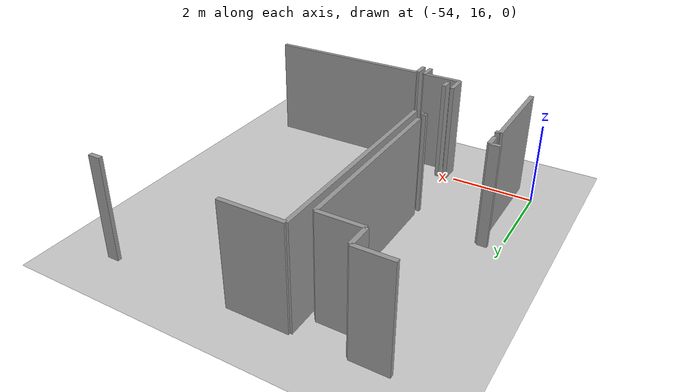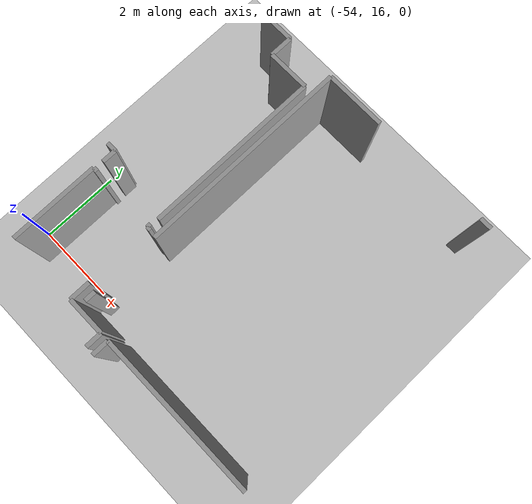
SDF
<sdf version="1.6">
 <world name="default">
  <model name="ground_plane">
   <static>1</static>
   <link name="link">
    <collision name="collision">
     <geometry><plane><normal>0 0 1</normal><size>100 100</size></plane></geometry>
     <surface><friction><ode><mu>100</mu><mu2>50</mu2></ode></friction></surface>
    </collision>
    <visual name="visual">
     <cast_shadows>0</cast_shadows>
     <geometry><plane><normal>0 0 1</normal><size>100 100</size></plane></geometry>
     <material>
      <script><uri>file://media/materials/scripts/gazebo.material</uri><name>Gazebo/Grey</name></script>
     </material>
    </visual>
   </link>
  </model>
  <model name="50010539">
   <static>1</static>
   <link name="Wall_8">
    <collision name="Wall_8_Collision">
     <geometry><box><size>0.857066639567 0.1 2.5</size></box></geometry>
     <pose>0.428533319784 0 1.25 0 0 0</pose>
    </collision>
    <visual name="Wall_8_Visual">
     <pose>0.428533319784 0 1.25 0 0 0</pose>
     <geometry><box><size>0.857066639567 0.1 2.5</size></box></geometry>
     <material>
      <script><uri>file://media/materials/scripts/gazebo.material</uri><name>Gazebo/Grey</name></script>
      <ambient>1 1 1 1</ambient>
     </material>
    </visual>
    <pose>9.16071746145 -0.0176570717207 0 0 0 0.0</pose>
   </link>
   <link name="Wall_9">
    <collision name="Wall_9_Collision">
     <geometry><box><size>0.54851248698 0.1 2.5</size></box></geometry>
     <pose>0.27425624349 0 1.25 0 0 0</pose>
    </collision>
    <visual name="Wall_9_Visual">
     <pose>0.27425624349 0 1.25 0 0 0</pose>
     <geometry><box><size>0.54851248698 0.1 2.5</size></box></geometry>
     <material>
      <script><uri>file://media/materials/scripts/gazebo.material</uri><name>Gazebo/Grey</name></script>
      <ambient>1 1 1 1</ambient>
     </material>
    </visual>
    <pose>10.017784101 -0.0176570717207 0 0 0 -1.57079632679</pose>
   </link>
   <link name="Wall_10">
    <collision name="Wall_10_Collision">
     <geometry><box><size>1.01204237697 0.1 2.5</size></box></geometry>
     <pose>0.506021188486 0 1.25 0 0 0</pose>
    </collision>
    <visual name="Wall_10_Visual">
     <pose>0.506021188486 0 1.25 0 0 0</pose>
     <geometry><box><size>1.01204237697 0.1 2.5</size></box></geometry>
     <material>
      <script><uri>file://media/materials/scripts/gazebo.material</uri><name>Gazebo/Grey</name></script>
      <ambient>1 1 1 1</ambient>
     </material>
    </visual>
    <pose>10.017784101 -0.5661695587 0 0 0 0.0</pose>
   </link>
   <link name="Wall_11">
    <collision name="Wall_11_Collision">
     <geometry><box><size>4.26157872005 0.1 2.5</size></box></geometry>
     <pose>2.13078936003 0 1.25 0 0 0</pose>
    </collision>
    <visual name="Wall_11_Visual">
     <pose>2.13078936003 0 1.25 0 0 0</pose>
     <geometry><box><size>4.26157872005 0.1 2.5</size></box></geometry>
     <material>
      <script><uri>file://media/materials/scripts/gazebo.material</uri><name>Gazebo/Grey</name></script>
      <ambient>1 1 1 1</ambient>
     </material>
    </visual>
    <pose>11.029826478 -0.5661695587 0 0 0 -1.57079632679</pose>
   </link>
   <link name="Wall_12">
    <collision name="Wall_12_Collision">
     <geometry><box><size>0.344122354615 0.1 2.5</size></box></geometry>
     <pose>0.172061177307 0 1.25 0 0 0</pose>
    </collision>
    <visual name="Wall_12_Visual">
     <pose>0.172061177307 0 1.25 0 0 0</pose>
     <geometry><box><size>0.344122354615 0.1 2.5</size></box></geometry>
     <material>
      <script><uri>file://media/materials/scripts/gazebo.material</uri><name>Gazebo/Grey</name></script>
      <ambient>1 1 1 1</ambient>
     </material>
    </visual>
    <pose>9.30286324026 -4.82774827875 0 0 0 1.57079632679</pose>
   </link>
   <link name="Wall_13">
    <collision name="Wall_13_Collision">
     <geometry><box><size>0.240085363685 0.1 2.5</size></box></geometry>
     <pose>0.120042681842 0 1.25 0 0 0</pose>
    </collision>
    <visual name="Wall_13_Visual">
     <pose>0.120042681842 0 1.25 0 0 0</pose>
     <geometry><box><size>0.240085363685 0.1 2.5</size></box></geometry>
     <material>
      <script><uri>file://media/materials/scripts/gazebo.material</uri><name>Gazebo/Grey</name></script>
      <ambient>1 1 1 1</ambient>
     </material>
    </visual>
    <pose>9.30286324026 -4.48362592414 0 0 0 3.14159265359</pose>
   </link>
   <link name="Wall_17">
    <collision name="Wall_17_Collision">
     <geometry><box><size>0.269937247529 0.1 2.5</size></box></geometry>
     <pose>0.134968623765 0 1.25 0 0 0</pose>
    </collision>
    <visual name="Wall_17_Visual">
     <pose>0.134968623765 0 1.25 0 0 0</pose>
     <geometry><box><size>0.269937247529 0.1 2.5</size></box></geometry>
     <material>
      <script><uri>file://media/materials/scripts/gazebo.material</uri><name>Gazebo/Grey</name></script>
      <ambient>1 1 1 1</ambient>
     </material>
    </visual>
    <pose>11.263560377 -7.03018216001 0 0 0 1.57079632679</pose>
   </link>
   <link name="Wall_18">
    <collision name="Wall_18_Collision">
     <geometry><box><size>5.14570259902 0.1 2.5</size></box></geometry>
     <pose>2.57285129951 0 1.25 0 0 0</pose>
    </collision>
    <visual name="Wall_18_Visual">
     <pose>2.57285129951 0 1.25 0 0 0</pose>
     <geometry><box><size>5.14570259902 0.1 2.5</size></box></geometry>
     <material>
      <script><uri>file://media/materials/scripts/gazebo.material</uri><name>Gazebo/Grey</name></script>
      <ambient>1 1 1 1</ambient>
     </material>
    </visual>
    <pose>11.263560377 -5.15408653235 0 0 0 1.57079632679</pose>
   </link>
   <link name="Wall_19">
    <collision name="Wall_19_Collision">
     <geometry><box><size>1.47379385686 0.1 2.5</size></box></geometry>
     <pose>0.736896928432 0 1.25 0 0 0</pose>
    </collision>
    <visual name="Wall_19_Visual">
     <pose>0.736896928432 0 1.25 0 0 0</pose>
     <geometry><box><size>1.47379385686 0.1 2.5</size></box></geometry>
     <material>
      <script><uri>file://media/materials/scripts/gazebo.material</uri><name>Gazebo/Grey</name></script>
      <ambient>1 1 1 1</ambient>
     </material>
    </visual>
    <pose>11.263560377 -0.00838393333503 0 0 0 0.0</pose>
   </link>
   <link name="Wall_20">
    <collision name="Wall_20_Collision">
     <geometry><box><size>0.290515992988 0.1 2.5</size></box></geometry>
     <pose>0.145257996494 0 1.25 0 0 0</pose>
    </collision>
    <visual name="Wall_20_Visual">
     <pose>0.145257996494 0 1.25 0 0 0</pose>
     <geometry><box><size>0.290515992988 0.1 2.5</size></box></geometry>
     <material>
      <script><uri>file://media/materials/scripts/gazebo.material</uri><name>Gazebo/Grey</name></script>
      <ambient>1 1 1 1</ambient>
     </material>
    </visual>
    <pose>15.6338761718 -0.00838393333503 0 0 0 0.0</pose>
   </link>
   <link name="Wall_24">
    <collision name="Wall_24_Collision">
     <geometry><box><size>0.403445034425 0.1 2.5</size></box></geometry>
     <pose>0.201722517212 0 1.25 0 0 0</pose>
    </collision>
    <visual name="Wall_24_Visual">
     <pose>0.201722517212 0 1.25 0 0 0</pose>
     <geometry><box><size>0.403445034425 0.1 2.5</size></box></geometry>
     <material>
      <script><uri>file://media/materials/scripts/gazebo.material</uri><name>Gazebo/Grey</name></script>
      <ambient>1 1 1 1</ambient>
     </material>
    </visual>
    <pose>12.1843957217 -7.63407941871 0 0 0 1.57079632679</pose>
   </link>
   <link name="Wall_25">
    <collision name="Wall_25_Collision">
     <geometry><box><size>3.96699778969 0.1 2.5</size></box></geometry>
     <pose>1.98349889485 0 1.25 0 0 0</pose>
    </collision>
    <visual name="Wall_25_Visual">
     <pose>1.98349889485 0 1.25 0 0 0</pose>
     <geometry><box><size>3.96699778969 0.1 2.5</size></box></geometry>
     <material>
      <script><uri>file://media/materials/scripts/gazebo.material</uri><name>Gazebo/Grey</name></script>
      <ambient>1 1 1 1</ambient>
     </material>
    </visual>
    <pose>12.1843957217 -7.23063438429 0 0 0 0.0</pose>
   </link>
   <link name="Wall_54">
    <collision name="Wall_54_Collision">
     <geometry><box><size>2.18236325297 0.1 2.5</size></box></geometry>
     <pose>1.09118162648 0 1.25 0 0 0</pose>
    </collision>
    <visual name="Wall_54_Visual">
     <pose>1.09118162648 0 1.25 0 0 0</pose>
     <geometry><box><size>2.18236325297 0.1 2.5</size></box></geometry>
     <material>
      <script><uri>file://media/materials/scripts/gazebo.material</uri><name>Gazebo/Grey</name></script>
      <ambient>1 1 1 1</ambient>
     </material>
    </visual>
    <pose>9.2697085948 -7.24016158126 0 0 0 1.57079632679</pose>
   </link>
   <link name="Wall_55">
    <collision name="Wall_55_Collision">
     <geometry><box><size>0.10746678184 0.1 2.5</size></box></geometry>
     <pose>0.0537333909199 0 1.25 0 0 0</pose>
    </collision>
    <visual name="Wall_55_Visual">
     <pose>0.0537333909199 0 1.25 0 0 0</pose>
     <geometry><box><size>0.10746678184 0.1 2.5</size></box></geometry>
     <material>
      <script><uri>file://media/materials/scripts/gazebo.material</uri><name>Gazebo/Grey</name></script>
      <ambient>1 1 1 1</ambient>
     </material>
    </visual>
    <pose>9.2697085948 -5.05779832829 0 0 0 0.0</pose>
   </link>
   <link name="Wall_56">
    <collision name="Wall_56_Collision">
     <geometry><box><size>0.0933665303219 0.1 2.5</size></box></geometry>
     <pose>0.0466832651609 0 1.25 0 0 0</pose>
    </collision>
    <visual name="Wall_56_Visual">
     <pose>0.0466832651609 0 1.25 0 0 0</pose>
     <geometry><box><size>0.0933665303219 0.1 2.5</size></box></geometry>
     <material>
      <script><uri>file://media/materials/scripts/gazebo.material</uri><name>Gazebo/Grey</name></script>
      <ambient>1 1 1 1</ambient>
     </material>
    </visual>
    <pose>10.9466222911 -5.05779832829 0 0 0 0.0</pose>
   </link>
   <link name="Wall_57">
    <collision name="Wall_57_Collision">
     <geometry><box><size>0.0825690404207 0.1 2.5</size></box></geometry>
     <pose>0.0412845202104 0 1.25 0 0 0</pose>
    </collision>
    <visual name="Wall_57_Visual">
     <pose>0.0412845202104 0 1.25 0 0 0</pose>
     <geometry><box><size>0.0825690404207 0.1 2.5</size></box></geometry>
     <material>
      <script><uri>file://media/materials/scripts/gazebo.material</uri><name>Gazebo/Grey</name></script>
      <ambient>1 1 1 1</ambient>
     </material>
    </visual>
    <pose>11.0399888214 -5.05779832829 0 0 0 -1.57079632679</pose>
   </link>
   <link name="Wall_58">
    <collision name="Wall_58_Collision">
     <geometry><box><size>0.501130560707 0.1 2.5</size></box></geometry>
     <pose>0.250565280354 0 1.25 0 0 0</pose>
    </collision>
    <visual name="Wall_58_Visual">
     <pose>0.250565280354 0 1.25 0 0 0</pose>
     <geometry><box><size>0.501130560707 0.1 2.5</size></box></geometry>
     <material>
      <script><uri>file://media/materials/scripts/gazebo.material</uri><name>Gazebo/Grey</name></script>
      <ambient>1 1 1 1</ambient>
     </material>
    </visual>
    <pose>11.0399888214 -6.72366047611 0 0 0 -1.57079632679</pose>
   </link>
   <link name="Wall_59">
    <collision name="Wall_59_Collision">
     <geometry><box><size>0.937349152715 0.1 2.5</size></box></geometry>
     <pose>0.468674576357 0 1.25 0 0 0</pose>
    </collision>
    <visual name="Wall_59_Visual">
     <pose>0.468674576357 0 1.25 0 0 0</pose>
     <geometry><box><size>0.937349152715 0.1 2.5</size></box></geometry>
     <material>
      <script><uri>file://media/materials/scripts/gazebo.material</uri><name>Gazebo/Grey</name></script>
      <ambient>1 1 1 1</ambient>
     </material>
    </visual>
    <pose>11.0399888214 -7.22479103681 0 0 0 0.0</pose>
   </link>
   <link name="Wall_60">
    <collision name="Wall_60_Collision">
     <geometry><box><size>0.392647544524 0.1 2.5</size></box></geometry>
     <pose>0.196323772262 0 1.25 0 0 0</pose>
    </collision>
    <visual name="Wall_60_Visual">
     <pose>0.196323772262 0 1.25 0 0 0</pose>
     <geometry><box><size>0.392647544524 0.1 2.5</size></box></geometry>
     <material>
      <script><uri>file://media/materials/scripts/gazebo.material</uri><name>Gazebo/Grey</name></script>
      <ambient>1 1 1 1</ambient>
     </material>
    </visual>
    <pose>11.9773379741 -7.22479103681 0 0 0 -1.57079632679</pose>
   </link>
   <pose>-62.8 22.8208416961 0 0 0 0</pose>
  </model>
 </world>
</sdf>
